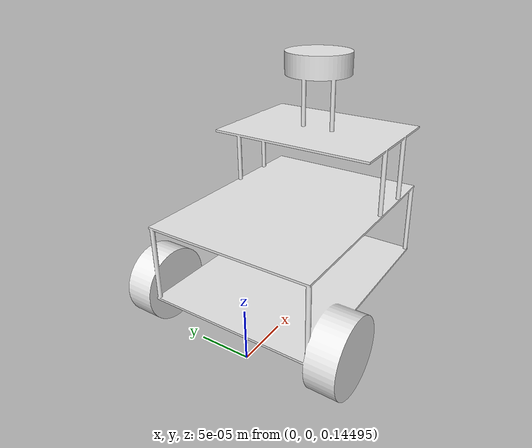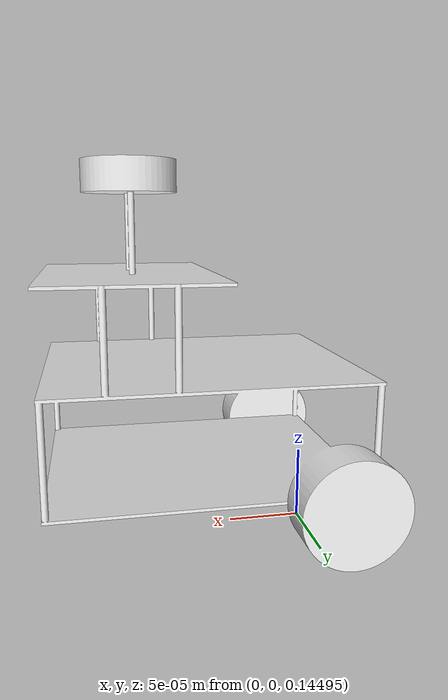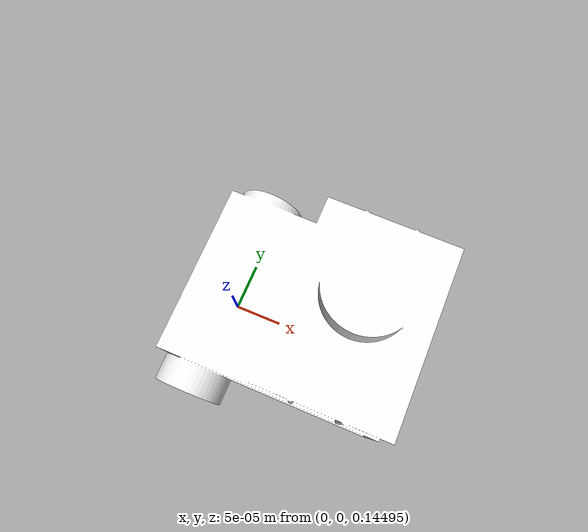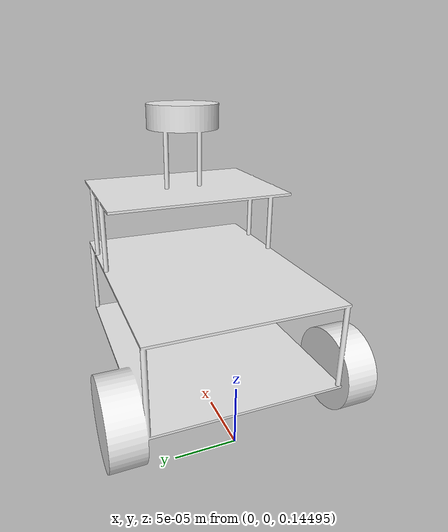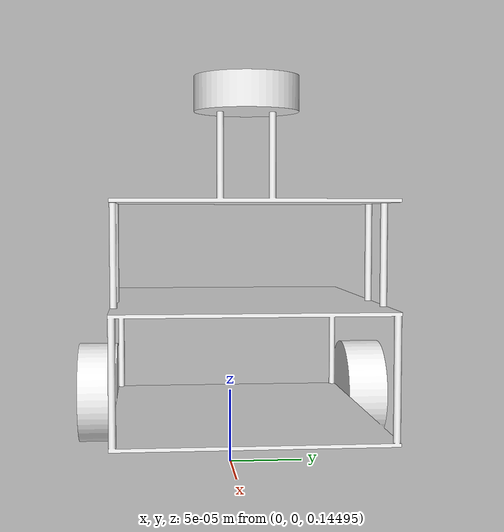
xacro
<?xml version="1.0"?>
<robot name="mobile_robot" xmlns:xacro="http://ros.org/wiki/xacro">

    <link name="base_footprint">
        <collision>
          <origin rpy="0 0 3.14" xyz="0 0 0.07"/>
          <geometry>
            <box size="0.155 0.2 0.002"/>
          </geometry>
        </collision>
    </link>

    <joint name="base_link_joint" type="fixed">
        <origin xyz="0 0 0" rpy="0 0 0" />
        <parent link="base_footprint" />
        <child link="base_link" />
    </joint>

    <link name="base_link">
    <visual>
      <origin rpy="0 0 3.14" xyz="0 0 0.145 "/>
      <geometry>
        <mesh filename="package://kwj_description/stl/total.stl" scale="0.001 0.001 0.001"/>
      </geometry>
      <material name="white"/>
    </visual>
    <collision>
      <origin rpy="0 0 3.14" xyz="0 0 0.145" />
      <geometry>
        <mesh filename="package://kwj_description/stl/total.stl" scale="0.001 0.001 0.001" />
      </geometry>
    </collision>
    </link>

</robot>
